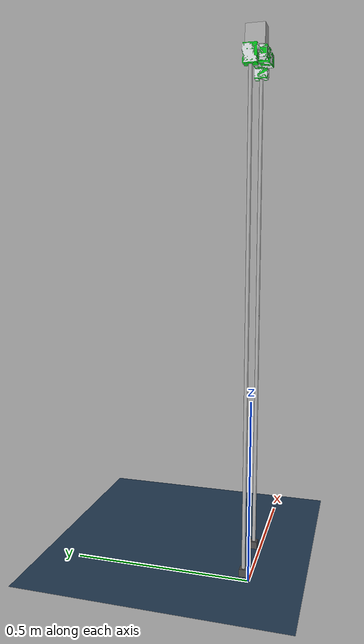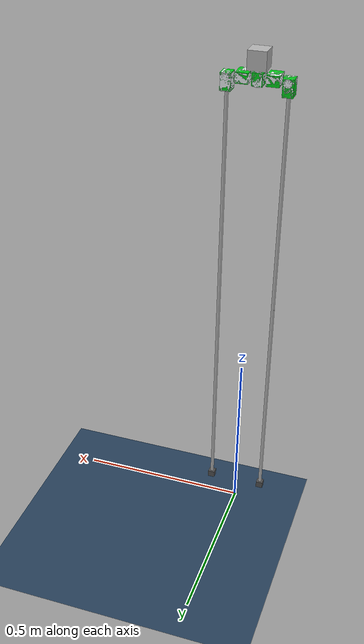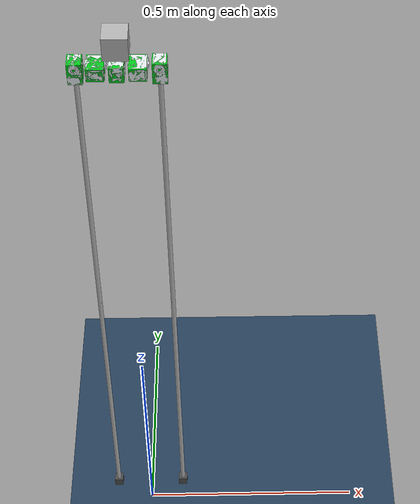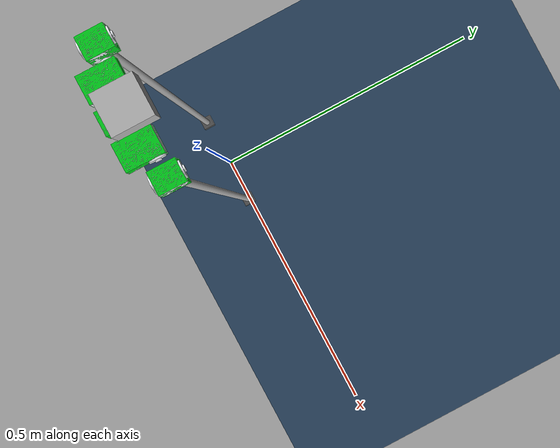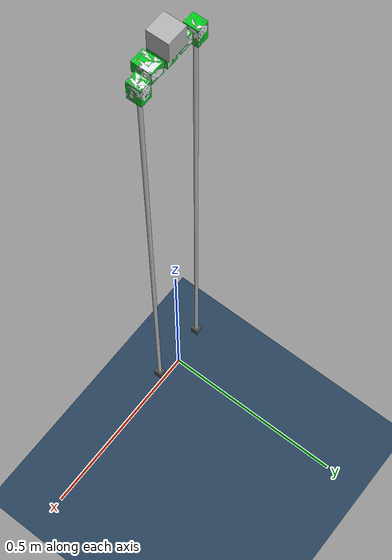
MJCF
<mujoco model="chopstickbot scene">
  <include file="chopstick_bot_general.xml"/>

     <!-- setup scene -->
  <statistic extent="0.8" center="0 0 0.5"/>
  <visual>
    <headlight diffuse="0.6 0.6 0.6" ambient="0.3 0.3 0.3" specular="0 0 0"/>
    <rgba haze="0.15 0.25 0.35 1"/>
    <global azimuth="120" elevation="-20"/>
  </visual>

  <asset>
    <texture type="skybox" builtin="gradient" rgb1="0.3 0.5 0.7" rgb2="0 0 0" width="512" height="3072"/>
    <texture type="2d" name="groundplane" builtin="checker" mark="edge" rgb1="0.2 0.3 0.4" rgb2="0.1 0.2 0.3"
      markrgb="0.8 0.8 0.8" width="300" height="300"/>
    <material name="groundplane" texture="groundplane" texuniform="true" texrepeat="5 5" reflectance="0.2"/>
  </asset>

  <worldbody>
    <light pos="0 0 1.5" dir="0 0 -1" directional="true"/>
    <!-- Explicitly set floor sliding friction to 1.0 (MuJoCo default). -->
    <geom name="floor" size="0 0 0.05" type="plane" material="groundplane" friction="1.0"/>
  </worldbody>

  <keyframe>
    <key name="home"
      qpos="
    0 0 1.37
    1 0 0 0
    0 0 0 0 0
    "
      ctrl="
    0 0 0 0 0
    "/>
  </keyframe>

</mujoco>

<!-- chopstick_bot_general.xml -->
<mujoco model="chopstick_bot">
  <compiler angle="radian" balanceinertia="true" />
  <asset>
    <mesh name="motor_mesh" file="meshes/XL-430_new_coordinate_on_axis.STL" scale="0.001000 0.001000 0.001000" />
    </asset>
  <worldbody>
    <body name="base_motor_link" pos="0.000000 0.000000 1.370000" quat="1.000000 0.000000 0.000000 0.000000">
      <freejoint name="floating_base" />
      <camera name="track" mode="trackcom" pos="0.947000 1.248000 0.500000" xyaxes="-0.779 0.628 0 -0.221 -0.274 0.936" />
      <inertial pos="0.000000 -0.012000 0.000000" mass="0.065000" diaginertia="0.000017973854 0.000010661354 0.000016111875" />
      <geom type="mesh" mesh="motor_mesh" rgba="0.89804 0.91765 0.92941 1.0" contype="0" conaffinity="0" group="0" />
      <geom type="box" size="0.014250 0.023250 0.017000" pos="0.000000 -0.012000 0.000000" rgba="0.0 0.8 0.1 1.0" contype="0" conaffinity="0" group="1" />
      <body name="l_hip_pitch" pos="-0.040000 0.000000 0.000000" quat="0.707107 0.000000 -0.707107 0.000000">
        <inertial pos="0.000000 -0.012000 0.000000" mass="0.065000" diaginertia="0.000017973854 0.000010661354 0.000016111875" />
        <geom type="mesh" mesh="motor_mesh" rgba="0.89804 0.91765 0.92941 1.0" contype="0" conaffinity="0" group="0" />
        <geom type="box" size="0.014250 0.023250 0.017000" pos="0.000000 -0.012000 0.000000" rgba="0.0 0.8 0.1 1.0" contype="0" conaffinity="0" group="1" />
        <body name="l_hip_pitch_out" pos="0.000000 0.000000 0.000000" quat="1.000000 0.000000 0.000000 0.000000">
          <inertial pos="0.000000 0.000000 0.000000" mass="0.001000" diaginertia="0.000000016667 0.000000016667 0.000000016667" />
          <joint name="l_hip_pitch_joint" type="hinge" axis="0.000000 0.000000 1.000000" pos="0.000000 0.000000 0.000000" range="-3.14159 3.14159" stiffness="0" damping="0.01" frictionloss="0.01" armature="0.02" />
          <body name="l_hip_roll" pos="0.000000 0.000000 0.040000" quat="0.500000 -0.500000 -0.500000 -0.500000">
            <inertial pos="0.000000 -0.012000 0.000000" mass="0.065000" diaginertia="0.000017973854 0.000010661354 0.000016111875" />
            <geom type="mesh" mesh="motor_mesh" rgba="0.89804 0.91765 0.92941 1.0" contype="0" conaffinity="0" group="0" />
            <geom type="box" size="0.014250 0.023250 0.017000" pos="0.000000 -0.012000 0.000000" rgba="0.0 0.8 0.1 1.0" contype="0" conaffinity="0" group="1" />
            <body name="l_hip_roll_out" pos="0.000000 0.000000 0.000000" quat="1.000000 0.000000 0.000000 0.000000">
              <inertial pos="0.000000 0.000000 0.000000" mass="0.001000" diaginertia="0.000000016667 0.000000016667 0.000000016667" />
              <joint name="l_hip_roll_joint" type="hinge" axis="0.000000 0.000000 1.000000" pos="0.000000 0.000000 0.000000" range="-3.14159 3.14159" stiffness="0" damping="0.01" frictionloss="0.01" armature="0.02" />
              <body name="l_end_effector" pos="0.000000 -0.650000 0.000000" quat="1.000000 0.000000 0.000000 0.000000">
                <inertial pos="0.000000 0.000000 0.000000" mass="0.051051" diaginertia="0.007189984755 0.007189984755 0.000000638136" />
                <geom name="left_bar" type="cylinder" size="0.005000 0.650000" pos="0.000000 0.000000 0.000000" quat="0.707107 0.707107 0.000000 0.000000" rgba="0.7 0.7 0.7 1.0" contype="2" conaffinity="2" group="0" />
                <geom name="left_foot" type="box" size="0.010000 0.010000 0.010000" pos="0.000000 -0.650000 0.000000" rgba="0.3 0.3 0.3 1.0" contype="1" conaffinity="1" group="1" />
                <site name="left_foot" pos="0.000000 0.000000 0.000000" quat="1.000000 0.000000 0.000000 0.000000" />
                </body>
              </body>
            </body>
          </body>
        </body>
      <body name="r_hip_pitch" pos="0.040000 0.000000 0.000000" quat="0.707107 0.000000 0.707107 0.000000">
        <inertial pos="0.000000 -0.012000 0.000000" mass="0.065000" diaginertia="0.000017973854 0.000010661354 0.000016111875" />
        <geom type="mesh" mesh="motor_mesh" rgba="0.89804 0.91765 0.92941 1.0" contype="0" conaffinity="0" group="0" />
        <geom type="box" size="0.014250 0.023250 0.017000" pos="0.000000 -0.012000 0.000000" rgba="0.0 0.8 0.1 1.0" contype="0" conaffinity="0" group="1" />
        <body name="r_hip_pitch_out" pos="0.000000 0.000000 0.000000" quat="1.000000 0.000000 0.000000 0.000000">
          <inertial pos="0.000000 0.000000 0.000000" mass="0.001000" diaginertia="0.000000016667 0.000000016667 0.000000016667" />
          <joint name="r_hip_pitch_joint" type="hinge" axis="0.000000 0.000000 1.000000" pos="0.000000 0.000000 0.000000" range="-3.14159 3.14159" stiffness="0" damping="0.01" frictionloss="0.01" armature="0.02" />
          <body name="r_hip_roll" pos="-0.000000 0.000000 0.040000" quat="0.500000 -0.500000 0.500000 0.500000">
            <inertial pos="0.000000 -0.012000 0.000000" mass="0.065000" diaginertia="0.000017973854 0.000010661354 0.000016111875" />
            <geom type="mesh" mesh="motor_mesh" rgba="0.89804 0.91765 0.92941 1.0" contype="0" conaffinity="0" group="0" />
            <geom type="box" size="0.014250 0.023250 0.017000" pos="0.000000 -0.012000 0.000000" rgba="0.0 0.8 0.1 1.0" contype="0" conaffinity="0" group="1" />
            <body name="r_hip_roll_out" pos="0.000000 0.000000 0.000000" quat="1.000000 0.000000 0.000000 0.000000">
              <inertial pos="0.000000 0.000000 0.000000" mass="0.001000" diaginertia="0.000000016667 0.000000016667 0.000000016667" />
              <joint name="r_hip_roll_joint" type="hinge" axis="0.000000 0.000000 1.000000" pos="0.000000 0.000000 0.000000" range="-3.14159 3.14159" stiffness="0" damping="0.01" frictionloss="0.01" armature="0.02" />
              <body name="r_end_effector" pos="-0.000000 -0.650000 0.000000" quat="1.000000 0.000000 0.000000 0.000000">
                <inertial pos="0.000000 0.000000 0.000000" mass="0.051051" diaginertia="0.007189984755 0.007189984755 0.000000638136" />
                <geom name="right_bar" type="cylinder" size="0.005000 0.650000" pos="0.000000 0.000000 0.000000" quat="0.707107 0.707107 0.000000 0.000000" rgba="0.7 0.7 0.7 1.0" contype="2" conaffinity="2" group="0" />
                <geom name="right_foot" type="box" size="0.010000 0.010000 0.010000" pos="0.000000 -0.650000 0.000000" rgba="0.3 0.3 0.3 1.0" contype="1" conaffinity="1" group="1" />
                <site name="right_foot" pos="0.000000 0.000000 0.000000" quat="1.000000 0.000000 0.000000 0.000000" />
                </body>
              </body>
            </body>
          </body>
        </body>
      <body name="trunk_link" pos="0.000000 0.000000 0.050000" quat="1.000000 0.000000 0.000000 0.000000">
        <site name="imu" pos="0.000000 0.000000 0.000000" quat="0.707107 0.000000 0.000000 0.707107" />
        <joint name="base_to_trunk" type="hinge" axis="0.000000 0.000000 1.000000" range="-3.14159 3.14159" stiffness="0" damping="0.01" frictionloss="0.01" armature="0.02" />
        <inertial pos="0.000000 0.000000 0.000000" mass="0.200000" diaginertia="0.000083333333 0.000083333333 0.000083333333" />
        <geom type="box" size="0.025000 0.025000 0.025000" pos="0.000000 0.000000 0.000000" rgba="0.7 0.7 0.7 1.0" contype="0" conaffinity="0" group="0" />
        </body>
      </body>
    </worldbody>
  <sensor>
    <framepos name="position" objtype="site" objname="imu" noise="0.001" />
    <velocimeter name="linear-velocity" site="imu" noise="0.001" cutoff="30" />
    <framequat name="orientation" objtype="site" objname="imu" noise="0.001" />
    <gyro name="angular-velocity" site="imu" noise="0.005" cutoff="34.9" />
    <accelerometer name="linear-acceleration" site="imu" noise="0.005" cutoff="157" />
    <magnetometer name="magnetometer" site="imu" />
    <gyro site="imu" name="gyro" />
    <velocimeter site="imu" name="local_linvel" />
    <accelerometer site="imu" name="accelerometer" />
    <framezaxis objtype="site" objname="imu" name="upvector" />
    <framexaxis objtype="site" objname="imu" name="forwardvector" />
    <framelinvel objtype="site" objname="imu" name="global_linvel" />
    <frameangvel objtype="site" objname="imu" name="global_angvel" />
    <framelinvel objtype="site" objname="left_foot" name="left_foot_global_linvel" />
    <framelinvel objtype="site" objname="right_foot" name="right_foot_global_linvel" />
    <framepos objtype="site" objname="left_foot" name="left_foot_pos" />
    <framepos objtype="site" objname="right_foot" name="right_foot_pos" />
    <jointpos name="l_hip_pitch_joint_pos" joint="l_hip_pitch_joint" />
    <jointvel name="l_hip_pitch_joint_vel" joint="l_hip_pitch_joint" />
    <jointactuatorfrc name="l_hip_pitch_joint_frc" joint="l_hip_pitch_joint" />
    <jointpos name="r_hip_pitch_joint_pos" joint="r_hip_pitch_joint" />
    <jointvel name="r_hip_pitch_joint_vel" joint="r_hip_pitch_joint" />
    <jointactuatorfrc name="r_hip_pitch_joint_frc" joint="r_hip_pitch_joint" />
    <jointpos name="l_hip_roll_joint_pos" joint="l_hip_roll_joint" />
    <jointvel name="l_hip_roll_joint_vel" joint="l_hip_roll_joint" />
    <jointactuatorfrc name="l_hip_roll_joint_frc" joint="l_hip_roll_joint" />
    <jointpos name="r_hip_roll_joint_pos" joint="r_hip_roll_joint" />
    <jointvel name="r_hip_roll_joint_vel" joint="r_hip_roll_joint" />
    <jointactuatorfrc name="r_hip_roll_joint_frc" joint="r_hip_roll_joint" />
    <jointpos name="base_to_trunk_pos" joint="base_to_trunk" />
    <jointvel name="base_to_trunk_vel" joint="base_to_trunk" />
    <jointactuatorfrc name="base_to_trunk_frc" joint="base_to_trunk" />
    </sensor>
  <actuator>
    <position name="l_hip_pitch" joint="l_hip_pitch_joint" kp="5" kv="0" ctrlrange="-3.14159 3.14159" />
    <position name="r_hip_pitch" joint="r_hip_pitch_joint" kp="5" kv="0" ctrlrange="-3.14159 3.14159" />
    <position name="l_hip_roll" joint="l_hip_roll_joint" kp="5" kv="0" ctrlrange="-3.14159 3.14159" />
    <position name="r_hip_roll" joint="r_hip_roll_joint" kp="5" kv="0" ctrlrange="-3.14159 3.14159" />
    <position name="base_to_trunk" joint="base_to_trunk" kp="5" kv="0" ctrlrange="-3.14159 3.14159" />
    </actuator>
  </mujoco>
